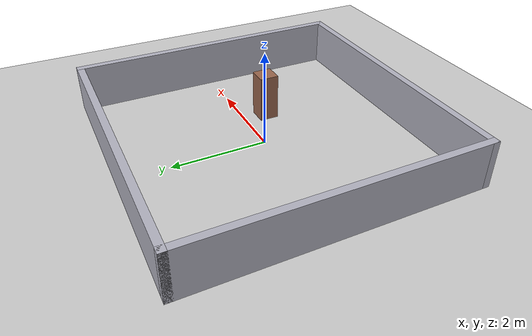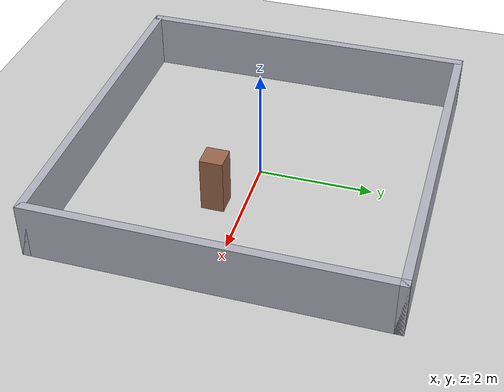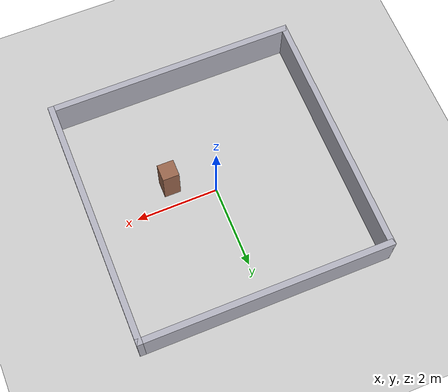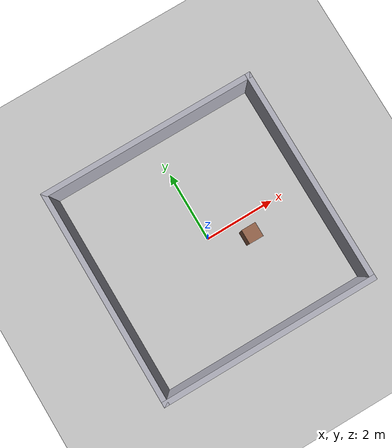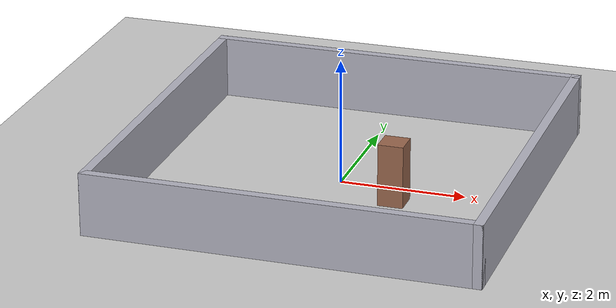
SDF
<?xml version="1.0" ?>
<sdf version="1.8">
    <world name="room_world">
        <!-- Core systems -->
        <plugin filename="gz-sim-physics-system" name="gz::sim::systems::Physics"></plugin>
        <plugin filename="gz-sim-user-commands-system" name="gz::sim::systems::UserCommands"></plugin>
        <plugin filename="gz-sim-scene-broadcaster-system" name="gz::sim::systems::SceneBroadcaster"></plugin>
        <!-- Required for rendering sensors (lidar, camera) to actually produce data -->
        <plugin filename="gz-sim-sensors-system" name="gz::sim::systems::Sensors">
            <render_engine>ogre2</render_engine>
        </plugin>
        <plugin filename="gz-sim-gpu-lidar-sensor-system" name="gz::sim::systems::GpuLidar"></plugin>

        <!-- Light -->
        <light type="directional" name="sun">
            <cast_shadows>true</cast_shadows>
            <pose>0 0 10 0 0 0</pose>
            <diffuse>0.8 0.8 0.8 1</diffuse>
            <specular>0.2 0.2 0.2 1</specular>
            <attenuation>
                <range>1000</range>
                <constant>0.9</constant>
                <linear>0.01</linear>
                <quadratic>0.001</quadratic>
            </attenuation>
            <direction>-0.5 0.1 -0.9</direction>
        </light>

        <!-- Ground -->
        <model name="ground_plane">
            <static>true</static>
            <link name="link">
                <collision name="collision">
                    <geometry>
                        <plane><normal>0 0 1</normal><size>100 100</size></plane>
                    </geometry>
                </collision>
                <visual name="visual">
                    <geometry>
                        <plane><normal>0 0 1</normal><size>100 100</size></plane>
                    </geometry>
                    <material>
                        <ambient>0.8 0.8 0.8 1</ambient>
                        <diffuse>0.8 0.8 0.8 1</diffuse>
                        <specular>0.8 0.8 0.8 1</specular>
                    </material>
                </visual>
            </link>
        </model>

        <!-- Room: 6m x 6m interior, walls 1m tall, 0.15m thick.
             xacro-style repetition isn't available in .world, so 4 walls
             are spelled out. Each is a static box. -->

        <!-- North wall (y = +3) -->
        <model name="wall_north">
            <static>true</static>
            <pose>0 3 0.5 0 0 0</pose>
            <link name="link">
                <collision name="c"><geometry><box><size>6.15 0.15 1.0</size></box></geometry></collision>
                <visual name="v"><geometry><box><size>6.15 0.15 1.0</size></box></geometry>
                    <material><ambient>0.7 0.7 0.75 1</ambient><diffuse>0.7 0.7 0.75 1</diffuse></material>
                </visual>
            </link>
        </model>

        <!-- South wall (y = -3) -->
        <model name="wall_south">
            <static>true</static>
            <pose>0 -3 0.5 0 0 0</pose>
            <link name="link">
                <collision name="c"><geometry><box><size>6.15 0.15 1.0</size></box></geometry></collision>
                <visual name="v"><geometry><box><size>6.15 0.15 1.0</size></box></geometry>
                    <material><ambient>0.7 0.7 0.75 1</ambient><diffuse>0.7 0.7 0.75 1</diffuse></material>
                </visual>
            </link>
        </model>

        <!-- East wall (x = +3) -->
        <model name="wall_east">
            <static>true</static>
            <pose>3 0 0.5 0 0 0</pose>
            <link name="link">
                <collision name="c"><geometry><box><size>0.15 6.15 1.0</size></box></geometry></collision>
                <visual name="v"><geometry><box><size>0.15 6.15 1.0</size></box></geometry>
                    <material><ambient>0.7 0.7 0.75 1</ambient><diffuse>0.7 0.7 0.75 1</diffuse></material>
                </visual>
            </link>
        </model>

        <!-- West wall (x = -3) -->
        <model name="wall_west">
            <static>true</static>
            <pose>-3 0 0.5 0 0 0</pose>
            <link name="link">
                <collision name="c"><geometry><box><size>0.15 6.15 1.0</size></box></geometry></collision>
                <visual name="v"><geometry><box><size>0.15 6.15 1.0</size></box></geometry>
                    <material><ambient>0.7 0.7 0.75 1</ambient><diffuse>0.7 0.7 0.75 1</diffuse></material>
                </visual>
            </link>
        </model>

        <!-- One interior obstacle so loop-closure has a feature -->
        <model name="pillar">
            <static>true</static>
            <pose>1.0 -0.5 0.5 0 0 0</pose>
            <link name="link">
                <collision name="c"><geometry><box><size>0.4 0.4 1.0</size></box></geometry></collision>
                <visual name="v"><geometry><box><size>0.4 0.4 1.0</size></box></geometry>
                    <material><ambient>0.6 0.4 0.3 1</ambient><diffuse>0.6 0.4 0.3 1</diffuse></material>
                </visual>
            </link>
        </model>

    </world>
</sdf>
